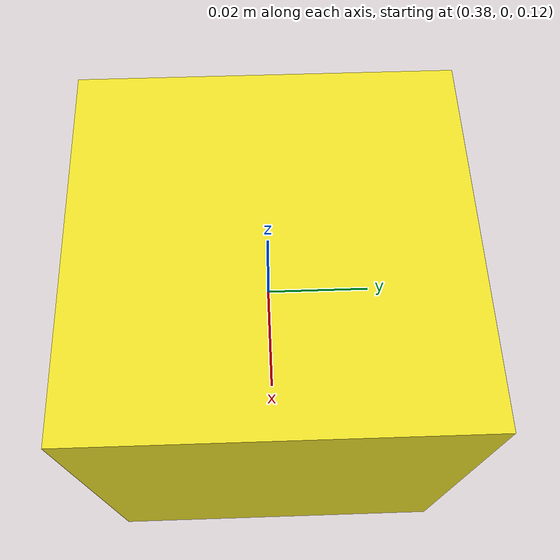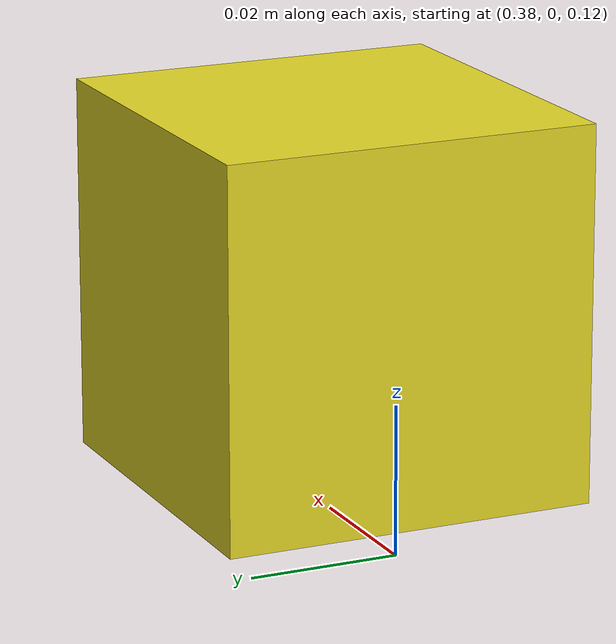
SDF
<?xml version='1.0'?>
<sdf version='1.6'>
  <model name="boxPancake">
    <link name="boxPancake">
      <pose>0.4 0 0.15 0 0 0</pose>
      <inertial>
        <mass>0.1</mass>
      </inertial>
      <collision name="box_collision">
        <geometry>
          <box>
              <size>.05 .05 .05</size>
          </box>
        </geometry>
      </collision>
      <visual name="box_visual">
        <geometry>
          <box>
              <size>.05 .05 .05</size>
          </box>
        </geometry>
		<material>
		    <script>
		      <uri>file://media/materials/scripts/gazebo.material</uri>
		      <name>Gazebo/Yellow</name>
		    </script>
      	</material>
      </visual>
    </link>
  </model>
</sdf>
